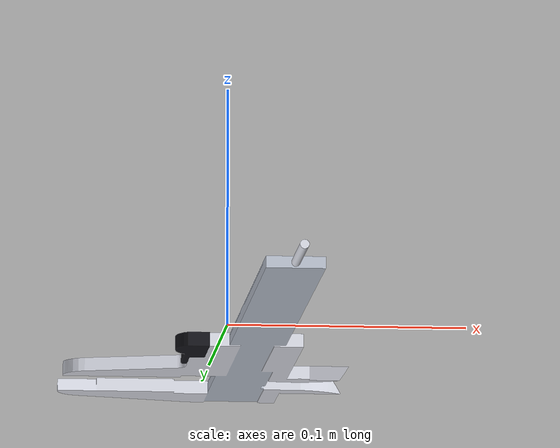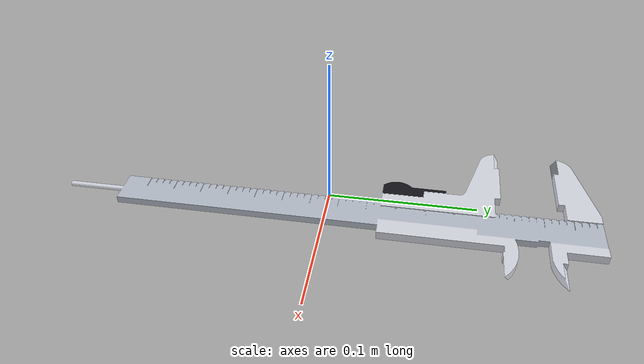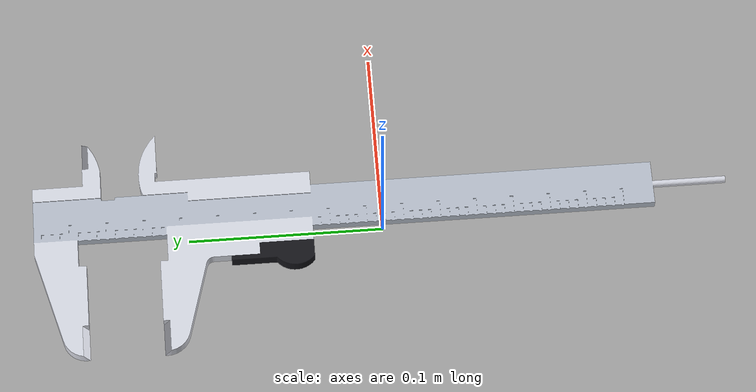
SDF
<?xml version="1.0"?>
<sdf version="1.6">
  <model name="igbt_module_plain">
    <link name="link">
      <inertial><mass>0.96</mass><inertia><ixx>0.01120</ixx><ixy>0</ixy><ixz>0</ixz><iyy>0.00256</iyy><iyz>0</iyz><izz>0.01344</izz></inertia></inertial>
      <collision name="collision"><pose>0 0 0.057 0 0 0</pose><geometry><mesh><uri>model://igbt_module_plain/meshes/digital_caliper.dae</uri><scale>2 2 2</scale></mesh></geometry><surface><friction><ode><mu>1.0</mu><mu2>1.0</mu2></ode></friction><contact><ode><kp>1e6</kp><kd>1.0</kd><min_depth>0.001</min_depth><max_vel>0.01</max_vel></ode></contact></surface></collision>
      <visual name="imported_tool_mesh"><pose>0 0 0.057 0 0 0</pose><geometry><mesh><uri>model://igbt_module_plain/meshes/digital_caliper.dae</uri><scale>2 2 2</scale></mesh></geometry></visual>
    </link>
  </model>
</sdf>
